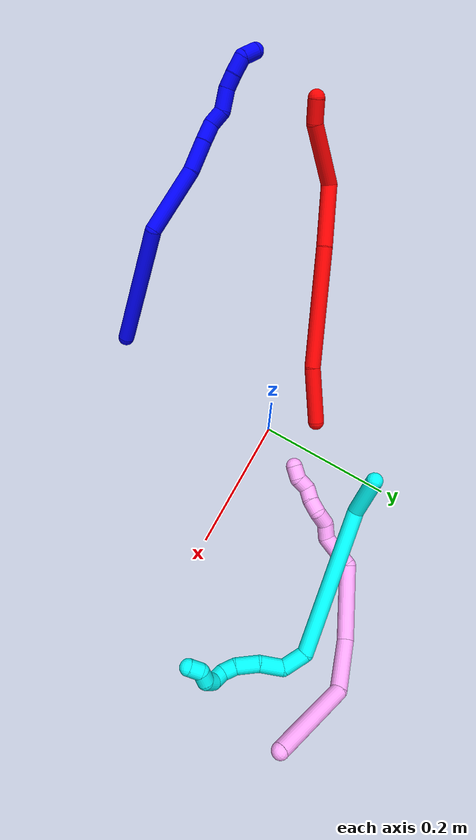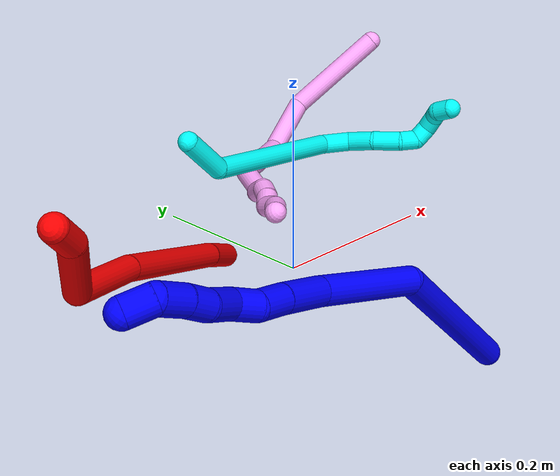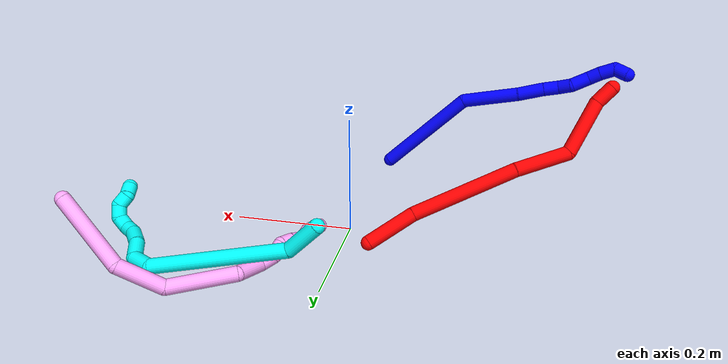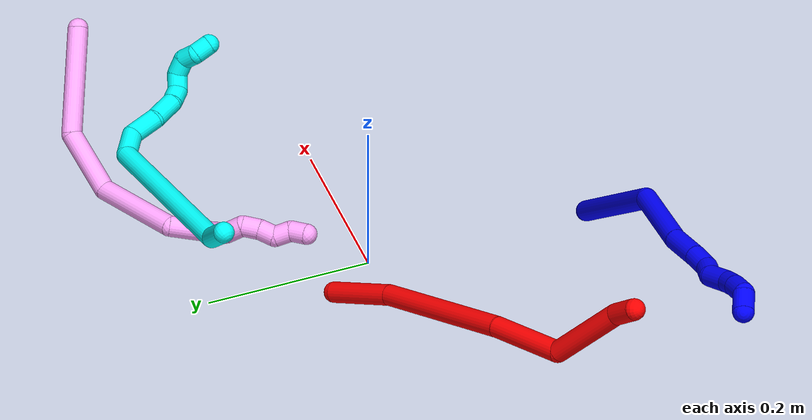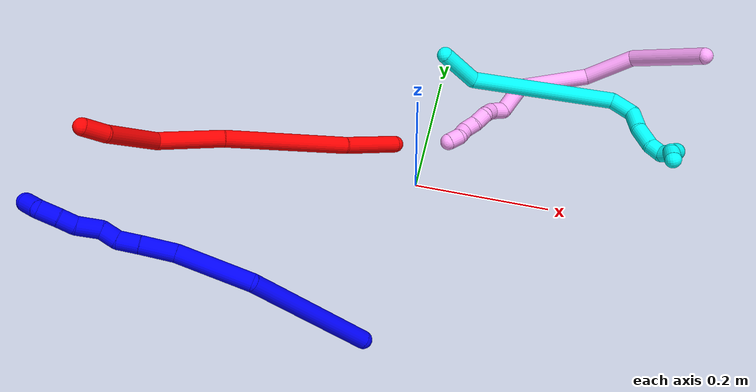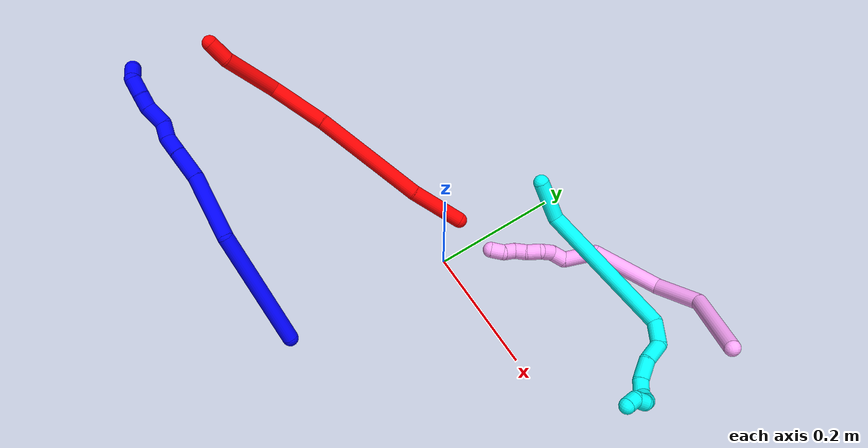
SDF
<sdf version="1.7">
 <world name="default">
  <plugin name="TubeGeneratorPlugin" filename="libtube_generator_plugin.so"/>
  <model name="photoneo_s_sensor">
   <static>1</static>
   <pose>0 0 2 1.57079 1.57079 3.14159</pose>
   <link name="link">
    <inertial><mass>0.1</mass></inertial>
    <sensor name="sensor" type="depth">
     <update_rate>30</update_rate>
     <camera>
      <horizontal_fov>1.22</horizontal_fov>
      <image><width>1920</width><height>1200</height><format>B8G8R8</format></image>
      <clip><near>0.1</near><far>4</far></clip>
      <depth_camera><output>points</output></depth_camera>
     </camera>
     <plugin name="camera_plugin" filename="libgazebo_ros_depth_camera.so">
      <baseline>0.2</baseline>
      <alwaysOn>1</alwaysOn>
      <updateRate>0.0</updateRate>
      <cameraName>camera_ir</cameraName>
      <imageTopicName>/camera/color/image_raw</imageTopicName>
      <cameraInfoTopicName>/camera/color/camera_info</cameraInfoTopicName>
      <depthImageTopicName>/camera/depth/image_raw</depthImageTopicName>
      <depthImageCameraInfoTopicName>/camera/depth/camera_info</depthImageCameraInfoTopicName>
      <pointCloudTopicName>/camera/depth/points</pointCloudTopicName>
      <frameName>fr_optical</frameName>
      <pointCloudCutoff>0.1</pointCloudCutoff>
      <pointCloudCutoffMax>2.0</pointCloudCutoffMax>
      <distortionK1>0</distortionK1>
      <distortionK2>0</distortionK2>
      <distortionK3>0</distortionK3>
      <distortionT1>0</distortionT1>
      <distortionT2>0</distortionT2>
      <CxPrime>0</CxPrime>
      <Cx>0</Cx>
      <Cy>0</Cy>
      <focalLength>0</focalLength>
      <hackBaseline>0</hackBaseline>
     </plugin>
    </sensor>
   </link>
  </model>
  <gravity>0 0 -9.8</gravity>
  <magnetic_field>6e-06 2.3e-05 -4.2e-05</magnetic_field>
  <atmosphere type="adiabatic"/>
  <physics name="default_physics" default="0" type="ode">
   <max_step_size>0.003</max_step_size>
   <real_time_factor>1</real_time_factor>
   <real_time_update_rate>1000</real_time_update_rate>
   <max_contacts>10000</max_contacts>
   <ode>
    <solver>
     <type>quick</type>
     <iters>100</iters>
     <sor>1.3</sor>
     <use_dynamic_moi_rescaling>0</use_dynamic_moi_rescaling>
    </solver>
    <constraints>
     <contact_max_correcting_vel>0</contact_max_correcting_vel>
     <contact_surface_layer>0.001</contact_surface_layer>
     <cfm>0</cfm>
     <erp>0.2</erp>
    </constraints>
   </ode>
  </physics>
  <scene><ambient>0.4 0.4 0.4 1</ambient><background>0.7 0.7 0.7 1</background><shadows>0</shadows></scene>
  <audio><device>default</device></audio>
  <spherical_coordinates>
   <surface_model>EARTH_WGS84</surface_model>
   <latitude_deg>0</latitude_deg>
   <longitude_deg>0</longitude_deg>
   <elevation>0</elevation>
   <heading_deg>0</heading_deg>
  </spherical_coordinates>
  <model name="bin">
   <static>1</static>
   <link name="bottom">
    <collision name="collision-bottom">
     <pose>0 0 -0.01 0 -0 0</pose>
     <geometry><box><size>0.8 0.6 0.02</size></box></geometry>
     <surface>
      <friction><ode><mu>100</mu><mu2>100</mu2></ode></friction>
      <contact><collide_bitmask>65535</collide_bitmask></contact>
     </surface>
    </collision>
   </link>
   <link name="west_wall">
    <collision name="collision-west_wall">
     <pose>-0.41 0 0.1 0 -0 0</pose>
     <geometry><box><size>0.02 0.6 0.2</size></box></geometry>
     <surface>
      <friction><ode><mu>100</mu><mu2>100</mu2></ode></friction>
      <contact><collide_bitmask>65535</collide_bitmask></contact>
     </surface>
    </collision>
   </link>
   <link name="east_wall">
    <collision name="collision-east_wall">
     <pose>0.41 0 0.1 0 -0 0</pose>
     <geometry><box><size>0.02 0.6 0.2</size></box></geometry>
     <surface>
      <friction><ode><mu>100</mu><mu2>100</mu2></ode></friction>
      <contact><collide_bitmask>65535</collide_bitmask></contact>
     </surface>
    </collision>
   </link>
   <link name="south_wall">
    <collision name="collision-south_wall">
     <pose>0 -0.31 0.1 0 -0 0</pose>
     <geometry><box><size>0.8 0.02 0.2</size></box></geometry>
     <surface>
      <friction><ode><mu>100</mu><mu2>100</mu2></ode></friction>
      <contact><collide_bitmask>65535</collide_bitmask></contact>
     </surface>
    </collision>
   </link>
   <link name="north_wall">
    <collision name="collision-north_wall">
     <pose>0 0.31 0.1 0 -0 0</pose>
     <geometry><box><size>0.8 0.02 0.2</size></box></geometry>
     <surface>
      <friction><ode><mu>100</mu><mu2>100</mu2></ode></friction>
      <contact><collide_bitmask>65535</collide_bitmask></contact>
     </surface>
    </collision>
   </link>
  </model>
  <model name="1">
   <static>0</static>
   <link name="1">
    <collision name="collision-cylinder-e_1_1_4">
     <pose>-0.034354 -0.019995 0.086303 0.227668 -0.369936 -0.042777</pose>
     <geometry><cylinder><radius>0.0125</radius><length>0.190033</length></cylinder></geometry>
     <surface>
      <friction><ode><mu>1.16</mu><mu2>1.16</mu2><slip1>0</slip1><slip2>0</slip2></ode></friction>
      <contact><ode><kp>1e+06</kp><kd>1</kd><max_vel>0</max_vel><min_depth>0.001</min_depth></ode></contact>
     </surface>
    </collision>
    <visual name="visual-cylinder-e_1_1_4">
     <pose>-0.034354 -0.019995 0.086303 0.227668 -0.369936 -0.042777</pose>
     <geometry><cylinder><radius>0.0125</radius><length>0.190033</length></cylinder></geometry>
     <material><ambient>0 0 1 1</ambient></material>
    </visual>
    <collision name="collision-cylinder-e_2_4_5">
     <pose>-0.088108 -0.023075 0.217879 -0.357564 -0.381724 0.069804</pose>
     <geometry><cylinder><radius>0.0125</radius><length>0.104157</length></cylinder></geometry>
     <surface>
      <friction><ode><mu>1.16</mu><mu2>1.16</mu2><slip1>0</slip1><slip2>0</slip2></ode></friction>
      <contact><ode><kp>1e+06</kp><kd>1</kd><max_vel>0</max_vel><min_depth>0.001</min_depth></ode></contact>
     </surface>
    </collision>
    <visual name="visual-cylinder-e_2_4_5">
     <pose>-0.088108 -0.023075 0.217879 -0.357564 -0.381724 0.069804</pose>
     <geometry><cylinder><radius>0.0125</radius><length>0.104157</length></cylinder></geometry>
     <material><ambient>0 0 1 1</ambient></material>
    </visual>
    <collision name="collision-cylinder-e_3_5_6">
     <pose>-0.119652 -0.000276 0.282388 -0.296824 -0.543143 0.083215</pose>
     <geometry><cylinder><radius>0.0125</radius><length>0.046994</length></cylinder></geometry>
     <surface>
      <friction><ode><mu>1.16</mu><mu2>1.16</mu2><slip1>0</slip1><slip2>0</slip2></ode></friction>
      <contact><ode><kp>1e+06</kp><kd>1</kd><max_vel>0</max_vel><min_depth>0.001</min_depth></ode></contact>
     </surface>
    </collision>
    <visual name="visual-cylinder-e_3_5_6">
     <pose>-0.119652 -0.000276 0.282388 -0.296824 -0.543143 0.083215</pose>
     <geometry><cylinder><radius>0.0125</radius><length>0.046994</length></cylinder></geometry>
     <material><ambient>0 0 1 1</ambient></material>
    </visual>
    <collision name="collision-cylinder-e_4_6_7">
     <pose>-0.139108 0.010067 0.312842 -0.378342 -0.544562 0.106816</pose>
     <geometry><cylinder><radius>0.0125</radius><length>0.028228</length></cylinder></geometry>
     <surface>
      <friction><ode><mu>1.16</mu><mu2>1.16</mu2><slip1>0</slip1><slip2>0</slip2></ode></friction>
      <contact><ode><kp>1e+06</kp><kd>1</kd><max_vel>0</max_vel><min_depth>0.001</min_depth></ode></contact>
     </surface>
    </collision>
    <visual name="visual-cylinder-e_4_6_7">
     <pose>-0.139108 0.010067 0.312842 -0.378342 -0.544562 0.106816</pose>
     <geometry><cylinder><radius>0.0125</radius><length>0.028228</length></cylinder></geometry>
     <material><ambient>0 0 1 1</ambient></material>
    </visual>
    <collision name="collision-cylinder-e_5_7_8">
     <pose>-0.148662 0.017879 0.335414 -0.287144 -0.187239 0.027146</pose>
     <geometry><cylinder><radius>0.0125</radius><length>0.024096</length></cylinder></geometry>
     <surface>
      <friction><ode><mu>1.16</mu><mu2>1.16</mu2><slip1>0</slip1><slip2>0</slip2></ode></friction>
      <contact><ode><kp>1e+06</kp><kd>1</kd><max_vel>0</max_vel><min_depth>0.001</min_depth></ode></contact>
     </surface>
    </collision>
    <visual name="visual-cylinder-e_5_7_8">
     <pose>-0.148662 0.017879 0.335414 -0.287144 -0.187239 0.027146</pose>
     <geometry><cylinder><radius>0.0125</radius><length>0.024096</length></cylinder></geometry>
     <material><ambient>0 0 1 1</ambient></material>
    </visual>
    <collision name="collision-cylinder-e_6_8_9">
     <pose>-0.160939 0.021971 0.35972 -0.057059 -0.658285 0.019494</pose>
     <geometry><cylinder><radius>0.0125</radius><length>0.032803</length></cylinder></geometry>
     <surface>
      <friction><ode><mu>1.16</mu><mu2>1.16</mu2><slip1>0</slip1><slip2>0</slip2></ode></friction>
      <contact><ode><kp>1e+06</kp><kd>1</kd><max_vel>0</max_vel><min_depth>0.001</min_depth></ode></contact>
     </surface>
    </collision>
    <visual name="visual-cylinder-e_6_8_9">
     <pose>-0.160939 0.021971 0.35972 -0.057059 -0.658285 0.019494</pose>
     <geometry><cylinder><radius>0.0125</radius><length>0.032803</length></cylinder></geometry>
     <material><ambient>0 0 1 1</ambient></material>
    </visual>
    <collision name="collision-cylinder-e_7_9_10">
     <pose>-0.175034 0.023301 0.383042 -0.056848 -0.372783 0.010723</pose>
     <geometry><cylinder><radius>0.0125</radius><length>0.022303</length></cylinder></geometry>
     <surface>
      <friction><ode><mu>1.16</mu><mu2>1.16</mu2><slip1>0</slip1><slip2>0</slip2></ode></friction>
      <contact><ode><kp>1e+06</kp><kd>1</kd><max_vel>0</max_vel><min_depth>0.001</min_depth></ode></contact>
     </surface>
    </collision>
    <visual name="visual-cylinder-e_7_9_10">
     <pose>-0.175034 0.023301 0.383042 -0.056848 -0.372783 0.010723</pose>
     <geometry><cylinder><radius>0.0125</radius><length>0.022303</length></cylinder></geometry>
     <material><ambient>0 0 1 1</ambient></material>
    </visual>
    <collision name="collision-cylinder-e_8_10_11">
     <pose>-0.184136 0.026073 0.405658 -0.176326 -0.384965 0.034451</pose>
     <geometry><cylinder><radius>0.0125</radius><length>0.026844</length></cylinder></geometry>
     <surface>
      <friction><ode><mu>1.16</mu><mu2>1.16</mu2><slip1>0</slip1><slip2>0</slip2></ode></friction>
      <contact><ode><kp>1e+06</kp><kd>1</kd><max_vel>0</max_vel><min_depth>0.001</min_depth></ode></contact>
     </surface>
    </collision>
    <visual name="visual-cylinder-e_8_10_11">
     <pose>-0.184136 0.026073 0.405658 -0.176326 -0.384965 0.034451</pose>
     <geometry><cylinder><radius>0.0125</radius><length>0.026844</length></cylinder></geometry>
     <material><ambient>0 0 1 1</ambient></material>
    </visual>
    <collision name="collision-cylinder-e_9_11_2">
     <pose>-0.190294 0.037703 0.425654 -0.883827 -0.091245 0.043193</pose>
     <geometry><cylinder><radius>0.0125</radius><length>0.024542</length></cylinder></geometry>
     <surface>
      <friction><ode><mu>1.16</mu><mu2>1.16</mu2><slip1>0</slip1><slip2>0</slip2></ode></friction>
      <contact><ode><kp>1e+06</kp><kd>1</kd><max_vel>0</max_vel><min_depth>0.001</min_depth></ode></contact>
     </surface>
    </collision>
    <visual name="visual-cylinder-e_9_11_2">
     <pose>-0.190294 0.037703 0.425654 -0.883827 -0.091245 0.043193</pose>
     <geometry><cylinder><radius>0.0125</radius><length>0.024542</length></cylinder></geometry>
     <material><ambient>0 0 1 1</ambient></material>
    </visual>
    <collision name="collision-sphere-2">
     <pose>-0.191412 0.047151 0.433404 0 -0 0</pose>
     <geometry><sphere><radius>0.0125</radius></sphere></geometry>
     <surface>
      <friction><ode><mu>1.16</mu><mu2>1.16</mu2><slip1>0</slip1><slip2>0</slip2></ode></friction>
      <contact><ode><kp>1e+06</kp><kd>1</kd><max_vel>0</max_vel><min_depth>0.001</min_depth></ode></contact>
     </surface>
    </collision>
    <visual name="visual-sphere-2">
     <pose>-0.191412 0.047151 0.433404 0 -0 0</pose>
     <geometry><sphere><radius>0.0125</radius></sphere></geometry>
     <material><ambient>0 0 1 1</ambient></material>
    </visual>
    <collision name="collision-sphere-11">
     <pose>-0.189176 0.028255 0.417904 0 -0 0</pose>
     <geometry><sphere><radius>0.0125</radius></sphere></geometry>
     <surface>
      <friction><ode><mu>1.16</mu><mu2>1.16</mu2><slip1>0</slip1><slip2>0</slip2></ode></friction>
      <contact><ode><kp>1e+06</kp><kd>1</kd><max_vel>0</max_vel><min_depth>0.001</min_depth></ode></contact>
     </surface>
    </collision>
    <visual name="visual-sphere-11">
     <pose>-0.189176 0.028255 0.417904 0 -0 0</pose>
     <geometry><sphere><radius>0.0125</radius></sphere></geometry>
     <material><ambient>0 0 1 1</ambient></material>
    </visual>
    <collision name="collision-sphere-10">
     <pose>-0.179096 0.023891 0.393411 0 -0 0</pose>
     <geometry><sphere><radius>0.0125</radius></sphere></geometry>
     <surface>
      <friction><ode><mu>1.16</mu><mu2>1.16</mu2><slip1>0</slip1><slip2>0</slip2></ode></friction>
      <contact><ode><kp>1e+06</kp><kd>1</kd><max_vel>0</max_vel><min_depth>0.001</min_depth></ode></contact>
     </surface>
    </collision>
    <visual name="visual-sphere-10">
     <pose>-0.179096 0.023891 0.393411 0 -0 0</pose>
     <geometry><sphere><radius>0.0125</radius></sphere></geometry>
     <material><ambient>0 0 1 1</ambient></material>
    </visual>
    <collision name="collision-sphere-9">
     <pose>-0.170973 0.022711 0.372673 0 -0 0</pose>
     <geometry><sphere><radius>0.0125</radius></sphere></geometry>
     <surface>
      <friction><ode><mu>1.16</mu><mu2>1.16</mu2><slip1>0</slip1><slip2>0</slip2></ode></friction>
      <contact><ode><kp>1e+06</kp><kd>1</kd><max_vel>0</max_vel><min_depth>0.001</min_depth></ode></contact>
     </surface>
    </collision>
    <visual name="visual-sphere-9">
     <pose>-0.170973 0.022711 0.372673 0 -0 0</pose>
     <geometry><sphere><radius>0.0125</radius></sphere></geometry>
     <material><ambient>0 0 1 1</ambient></material>
    </visual>
    <collision name="collision-sphere-4">
     <pose>-0.068707 -0.03999 0.172605 0 -0 0</pose>
     <geometry><sphere><radius>0.0125</radius></sphere></geometry>
     <surface>
      <friction><ode><mu>1.16</mu><mu2>1.16</mu2><slip1>0</slip1><slip2>0</slip2></ode></friction>
      <contact><ode><kp>1e+06</kp><kd>1</kd><max_vel>0</max_vel><min_depth>0.001</min_depth></ode></contact>
     </surface>
    </collision>
    <visual name="visual-sphere-4">
     <pose>-0.068707 -0.03999 0.172605 0 -0 0</pose>
     <geometry><sphere><radius>0.0125</radius></sphere></geometry>
     <material><ambient>0 0 1 1</ambient></material>
    </visual>
    <collision name="collision-sphere-1">
     <geometry><sphere><radius>0.0125</radius></sphere></geometry>
     <surface>
      <friction><ode><mu>1.16</mu><mu2>1.16</mu2><slip1>0</slip1><slip2>0</slip2></ode></friction>
      <contact><ode><kp>1e+06</kp><kd>1</kd><max_vel>0</max_vel><min_depth>0.001</min_depth></ode></contact>
     </surface>
    </collision>
    <visual name="visual-sphere-1">
     <geometry><sphere><radius>0.0125</radius></sphere></geometry>
     <material><ambient>0 0 1 1</ambient></material>
    </visual>
    <collision name="collision-sphere-8">
     <pose>-0.150905 0.021231 0.346766 0 -0 0</pose>
     <geometry><sphere><radius>0.0125</radius></sphere></geometry>
     <surface>
      <friction><ode><mu>1.16</mu><mu2>1.16</mu2><slip1>0</slip1><slip2>0</slip2></ode></friction>
      <contact><ode><kp>1e+06</kp><kd>1</kd><max_vel>0</max_vel><min_depth>0.001</min_depth></ode></contact>
     </surface>
    </collision>
    <visual name="visual-sphere-8">
     <pose>-0.150905 0.021231 0.346766 0 -0 0</pose>
     <geometry><sphere><radius>0.0125</radius></sphere></geometry>
     <material><ambient>0 0 1 1</ambient></material>
    </visual>
    <collision name="collision-sphere-5">
     <pose>-0.107508 -0.00616 0.263152 0 -0 0</pose>
     <geometry><sphere><radius>0.0125</radius></sphere></geometry>
     <surface>
      <friction><ode><mu>1.16</mu><mu2>1.16</mu2><slip1>0</slip1><slip2>0</slip2></ode></friction>
      <contact><ode><kp>1e+06</kp><kd>1</kd><max_vel>0</max_vel><min_depth>0.001</min_depth></ode></contact>
     </surface>
    </collision>
    <visual name="visual-sphere-5">
     <pose>-0.107508 -0.00616 0.263152 0 -0 0</pose>
     <geometry><sphere><radius>0.0125</radius></sphere></geometry>
     <material><ambient>0 0 1 1</ambient></material>
    </visual>
    <collision name="collision-sphere-6">
     <pose>-0.131796 0.005607 0.301624 0 -0 0</pose>
     <geometry><sphere><radius>0.0125</radius></sphere></geometry>
     <surface>
      <friction><ode><mu>1.16</mu><mu2>1.16</mu2><slip1>0</slip1><slip2>0</slip2></ode></friction>
      <contact><ode><kp>1e+06</kp><kd>1</kd><max_vel>0</max_vel><min_depth>0.001</min_depth></ode></contact>
     </surface>
    </collision>
    <visual name="visual-sphere-6">
     <pose>-0.131796 0.005607 0.301624 0 -0 0</pose>
     <geometry><sphere><radius>0.0125</radius></sphere></geometry>
     <material><ambient>0 0 1 1</ambient></material>
    </visual>
    <collision name="collision-sphere-7">
     <pose>-0.146419 0.014526 0.324061 0 -0 0</pose>
     <geometry><sphere><radius>0.0125</radius></sphere></geometry>
     <surface>
      <friction><ode><mu>1.16</mu><mu2>1.16</mu2><slip1>0</slip1><slip2>0</slip2></ode></friction>
      <contact><ode><kp>1e+06</kp><kd>1</kd><max_vel>0</max_vel><min_depth>0.001</min_depth></ode></contact>
     </surface>
    </collision>
    <visual name="visual-sphere-7">
     <pose>-0.146419 0.014526 0.324061 0 -0 0</pose>
     <geometry><sphere><radius>0.0125</radius></sphere></geometry>
     <material><ambient>0 0 1 1</ambient></material>
    </visual>
    <inertial>
     <pose>-0.095267 -0.005271 0.221913 0 -0 0</pose>
     <mass>0.5</mass>
     <inertia>
      <ixx>0.000623</ixx>
      <ixy>0</ixy>
      <ixz>0</ixz>
      <iyy>0.000672</iyy>
      <iyz>0</iyz>
      <izz>0.000375</izz>
     </inertia>
    </inertial>
   </link>
   <pose>-0.015948 -0.272351 0.011498 -0.933719 -0.069347 1.08071</pose>
  </model>
  <model name="2">
   <static>0</static>
   <link name="2">
    <collision name="collision-cylinder-e_1_1_4">
     <pose>-0.000978 -0.002642 0.04368 0.060422 -0.022335 -0.000675</pose>
     <geometry><cylinder><radius>0.0125</radius><length>0.087541</length></cylinder></geometry>
     <surface>
      <friction><ode><mu>1.16</mu><mu2>1.16</mu2><slip1>0</slip1><slip2>0</slip2></ode></friction>
      <contact><ode><kp>1e+06</kp><kd>1</kd><max_vel>0</max_vel><min_depth>0.001</min_depth></ode></contact>
     </surface>
    </collision>
    <visual name="visual-cylinder-e_1_1_4">
     <pose>-0.000978 -0.002642 0.04368 0.060422 -0.022335 -0.000675</pose>
     <geometry><cylinder><radius>0.0125</radius><length>0.087541</length></cylinder></geometry>
     <material><ambient>1 0 0 1</ambient></material>
    </visual>
    <collision name="collision-cylinder-e_2_4_5">
     <pose>-0.020929 -0.012667 0.177371 0.081833 -0.207074 -0.008508</pose>
     <geometry><cylinder><radius>0.0125</radius><length>0.184571</length></cylinder></geometry>
     <surface>
      <friction><ode><mu>1.16</mu><mu2>1.16</mu2><slip1>0</slip1><slip2>0</slip2></ode></friction>
      <contact><ode><kp>1e+06</kp><kd>1</kd><max_vel>0</max_vel><min_depth>0.001</min_depth></ode></contact>
     </surface>
    </collision>
    <visual name="visual-cylinder-e_2_4_5">
     <pose>-0.020929 -0.012667 0.177371 0.081833 -0.207074 -0.008508</pose>
     <geometry><cylinder><radius>0.0125</radius><length>0.184571</length></cylinder></geometry>
     <material><ambient>1 0 0 1</ambient></material>
    </visual>
    <collision name="collision-cylinder-e_3_5_6">
     <pose>-0.051011 -0.029467 0.312677 0.204996 -0.235651 -0.02435</pose>
     <geometry><cylinder><radius>0.0125</radius><length>0.095157</length></cylinder></geometry>
     <surface>
      <friction><ode><mu>1.16</mu><mu2>1.16</mu2><slip1>0</slip1><slip2>0</slip2></ode></friction>
      <contact><ode><kp>1e+06</kp><kd>1</kd><max_vel>0</max_vel><min_depth>0.001</min_depth></ode></contact>
     </surface>
    </collision>
    <visual name="visual-cylinder-e_3_5_6">
     <pose>-0.051011 -0.029467 0.312677 0.204996 -0.235651 -0.02435</pose>
     <geometry><cylinder><radius>0.0125</radius><length>0.095157</length></cylinder></geometry>
     <material><ambient>1 0 0 1</ambient></material>
    </visual>
    <collision name="collision-cylinder-e_4_6_7">
     <pose>-0.04659 -0.025688 0.402404 -0.288714 0.323288 -0.047401</pose>
     <geometry><cylinder><radius>0.0125</radius><length>0.097765</length></cylinder></geometry>
     <surface>
      <friction><ode><mu>1.16</mu><mu2>1.16</mu2><slip1>0</slip1><slip2>0</slip2></ode></friction>
      <contact><ode><kp>1e+06</kp><kd>1</kd><max_vel>0</max_vel><min_depth>0.001</min_depth></ode></contact>
     </surface>
    </collision>
    <visual name="visual-cylinder-e_4_6_7">
     <pose>-0.04659 -0.025688 0.402404 -0.288714 0.323288 -0.047401</pose>
     <geometry><cylinder><radius>0.0125</radius><length>0.097765</length></cylinder></geometry>
     <material><ambient>1 0 0 1</ambient></material>
    </visual>
    <collision name="collision-cylinder-e_5_7_2">
     <pose>-0.03137 -0.007995 0.463728 -0.260103 -0.017698 0.002315</pose>
     <geometry><cylinder><radius>0.0125</radius><length>0.034966</length></cylinder></geometry>
     <surface>
      <friction><ode><mu>1.16</mu><mu2>1.16</mu2><slip1>0</slip1><slip2>0</slip2></ode></friction>
      <contact><ode><kp>1e+06</kp><kd>1</kd><max_vel>0</max_vel><min_depth>0.001</min_depth></ode></contact>
     </surface>
    </collision>
    <visual name="visual-cylinder-e_5_7_2">
     <pose>-0.03137 -0.007995 0.463728 -0.260103 -0.017698 0.002315</pose>
     <geometry><cylinder><radius>0.0125</radius><length>0.034966</length></cylinder></geometry>
     <material><ambient>1 0 0 1</ambient></material>
    </visual>
    <collision name="collision-sphere-2">
     <pose>-0.031679 -0.0035 0.480621 0 -0 0</pose>
     <geometry><sphere><radius>0.0125</radius></sphere></geometry>
     <surface>
      <friction><ode><mu>1.16</mu><mu2>1.16</mu2><slip1>0</slip1><slip2>0</slip2></ode></friction>
      <contact><ode><kp>1e+06</kp><kd>1</kd><max_vel>0</max_vel><min_depth>0.001</min_depth></ode></contact>
     </surface>
    </collision>
    <visual name="visual-sphere-2">
     <pose>-0.031679 -0.0035 0.480621 0 -0 0</pose>
     <geometry><sphere><radius>0.0125</radius></sphere></geometry>
     <material><ambient>1 0 0 1</ambient></material>
    </visual>
    <collision name="collision-sphere-7">
     <pose>-0.03106 -0.012491 0.446836 0 -0 0</pose>
     <geometry><sphere><radius>0.0125</radius></sphere></geometry>
     <surface>
      <friction><ode><mu>1.16</mu><mu2>1.16</mu2><slip1>0</slip1><slip2>0</slip2></ode></friction>
      <contact><ode><kp>1e+06</kp><kd>1</kd><max_vel>0</max_vel><min_depth>0.001</min_depth></ode></contact>
     </surface>
    </collision>
    <visual name="visual-sphere-7">
     <pose>-0.03106 -0.012491 0.446836 0 -0 0</pose>
     <geometry><sphere><radius>0.0125</radius></sphere></geometry>
     <material><ambient>1 0 0 1</ambient></material>
    </visual>
    <collision name="collision-sphere-6">
     <pose>-0.062119 -0.038885 0.357972 0 -0 0</pose>
     <geometry><sphere><radius>0.0125</radius></sphere></geometry>
     <surface>
      <friction><ode><mu>1.16</mu><mu2>1.16</mu2><slip1>0</slip1><slip2>0</slip2></ode></friction>
      <contact><ode><kp>1e+06</kp><kd>1</kd><max_vel>0</max_vel><min_depth>0.001</min_depth></ode></contact>
     </surface>
    </collision>
    <visual name="visual-sphere-6">
     <pose>-0.062119 -0.038885 0.357972 0 -0 0</pose>
     <geometry><sphere><radius>0.0125</radius></sphere></geometry>
     <material><ambient>1 0 0 1</ambient></material>
    </visual>
    <collision name="collision-sphere-5">
     <pose>-0.039902 -0.02005 0.267382 0 -0 0</pose>
     <geometry><sphere><radius>0.0125</radius></sphere></geometry>
     <surface>
      <friction><ode><mu>1.16</mu><mu2>1.16</mu2><slip1>0</slip1><slip2>0</slip2></ode></friction>
      <contact><ode><kp>1e+06</kp><kd>1</kd><max_vel>0</max_vel><min_depth>0.001</min_depth></ode></contact>
     </surface>
    </collision>
    <visual name="visual-sphere-5">
     <pose>-0.039902 -0.02005 0.267382 0 -0 0</pose>
     <geometry><sphere><radius>0.0125</radius></sphere></geometry>
     <material><ambient>1 0 0 1</ambient></material>
    </visual>
    <collision name="collision-sphere-1">
     <geometry><sphere><radius>0.0125</radius></sphere></geometry>
     <surface>
      <friction><ode><mu>1.16</mu><mu2>1.16</mu2><slip1>0</slip1><slip2>0</slip2></ode></friction>
      <contact><ode><kp>1e+06</kp><kd>1</kd><max_vel>0</max_vel><min_depth>0.001</min_depth></ode></contact>
     </surface>
    </collision>
    <visual name="visual-sphere-1">
     <geometry><sphere><radius>0.0125</radius></sphere></geometry>
     <material><ambient>1 0 0 1</ambient></material>
    </visual>
    <collision name="collision-sphere-4">
     <pose>-0.001955 -0.005285 0.087359 0 -0 0</pose>
     <geometry><sphere><radius>0.0125</radius></sphere></geometry>
     <surface>
      <friction><ode><mu>1.16</mu><mu2>1.16</mu2><slip1>0</slip1><slip2>0</slip2></ode></friction>
      <contact><ode><kp>1e+06</kp><kd>1</kd><max_vel>0</max_vel><min_depth>0.001</min_depth></ode></contact>
     </surface>
    </collision>
    <visual name="visual-sphere-4">
     <pose>-0.001955 -0.005285 0.087359 0 -0 0</pose>
     <geometry><sphere><radius>0.0125</radius></sphere></geometry>
     <material><ambient>1 0 0 1</ambient></material>
    </visual>
    <inertial>
     <pose>-0.028908 -0.016329 0.243741 0 -0 0</pose>
     <mass>0.5</mass>
     <inertia>
      <ixx>0.000722</ixx>
      <ixy>0</ixy>
      <ixz>0</ixz>
      <iyy>0.000736</iyy>
      <iyz>0</iyz>
      <izz>0.000178</izz>
     </inertia>
    </inertial>
   </link>
   <pose>-0.04497 0.05948 0.011494 1.04364 -0.283632 -0.806136</pose>
  </model>
  <model name="3">
   <static>0</static>
   <link name="3">
    <collision name="collision-cylinder-e_1_1_4">
     <pose>0.022063 0.018826 0.014815 -0.904055 0.744283 -0.374611</pose>
     <geometry><cylinder><radius>0.0125</radius><length>0.065137</length></cylinder></geometry>
     <surface>
      <friction><ode><mu>1.16</mu><mu2>1.16</mu2><slip1>0</slip1><slip2>0</slip2></ode></friction>
      <contact><ode><kp>1e+06</kp><kd>1</kd><max_vel>0</max_vel><min_depth>0.001</min_depth></ode></contact>
     </surface>
    </collision>
    <visual name="visual-cylinder-e_1_1_4">
     <pose>0.022063 0.018826 0.014815 -0.904055 0.744283 -0.374611</pose>
     <geometry><cylinder><radius>0.0125</radius><length>0.065137</length></cylinder></geometry>
     <material><ambient>0.003922 1 0.996078 1</ambient></material>
    </visual>
    <collision name="collision-cylinder-e_2_4_5">
     <pose>0.079342 0.071576 0.129415 -0.327719 0.322474 -0.053772</pose>
     <geometry><cylinder><radius>0.0125</radius><length>0.222242</length></cylinder></geometry>
     <surface>
      <friction><ode><mu>1.16</mu><mu2>1.16</mu2><slip1>0</slip1><slip2>0</slip2></ode></friction>
      <contact><ode><kp>1e+06</kp><kd>1</kd><max_vel>0</max_vel><min_depth>0.001</min_depth></ode></contact>
     </surface>
    </collision>
    <visual name="visual-cylinder-e_2_4_5">
     <pose>0.079342 0.071576 0.129415 -0.327719 0.322474 -0.053772</pose>
     <geometry><cylinder><radius>0.0125</radius><length>0.222242</length></cylinder></geometry>
     <material><ambient>0.003922 1 0.996078 1</ambient></material>
    </visual>
    <collision name="collision-cylinder-e_3_5_6">
     <pose>0.126701 0.100679 0.243046 0.335067 0.691661 0.12172</pose>
     <geometry><cylinder><radius>0.0125</radius><length>0.038075</length></cylinder></geometry>
     <surface>
      <friction><ode><mu>1.16</mu><mu2>1.16</mu2><slip1>0</slip1><slip2>0</slip2></ode></friction>
      <contact><ode><kp>1e+06</kp><kd>1</kd><max_vel>0</max_vel><min_depth>0.001</min_depth></ode></contact>
     </surface>
    </collision>
    <visual name="visual-cylinder-e_3_5_6">
     <pose>0.126701 0.100679 0.243046 0.335067 0.691661 0.12172</pose>
     <geometry><cylinder><radius>0.0125</radius><length>0.038075</length></cylinder></geometry>
     <material><ambient>0.003922 1 0.996078 1</ambient></material>
    </visual>
    <collision name="collision-cylinder-e_4_6_7">
     <pose>0.150739 0.082328 0.259906 1.35171 0.709236 0.577211</pose>
     <geometry><cylinder><radius>0.0125</radius><length>0.036532</length></cylinder></geometry>
     <surface>
      <friction><ode><mu>1.16</mu><mu2>1.16</mu2><slip1>0</slip1><slip2>0</slip2></ode></friction>
      <contact><ode><kp>1e+06</kp><kd>1</kd><max_vel>0</max_vel><min_depth>0.001</min_depth></ode></contact>
     </surface>
    </collision>
    <visual name="visual-cylinder-e_4_6_7">
     <pose>0.150739 0.082328 0.259906 1.35171 0.709236 0.577211</pose>
     <geometry><cylinder><radius>0.0125</radius><length>0.036532</length></cylinder></geometry>
     <material><ambient>0.003922 1 0.996078 1</ambient></material>
    </visual>
    <collision name="collision-cylinder-e_5_7_8">
     <pose>0.175561 0.059525 0.269675 0.941156 0.844856 0.449575</pose>
     <geometry><cylinder><radius>0.0125</radius><length>0.034567</length></cylinder></geometry>
     <surface>
      <friction><ode><mu>1.16</mu><mu2>1.16</mu2><slip1>0</slip1><slip2>0</slip2></ode></friction>
      <contact><ode><kp>1e+06</kp><kd>1</kd><max_vel>0</max_vel><min_depth>0.001</min_depth></ode></contact>
     </surface>
    </collision>
    <visual name="visual-cylinder-e_5_7_8">
     <pose>0.175561 0.059525 0.269675 0.941156 0.844856 0.449575</pose>
     <geometry><cylinder><radius>0.0125</radius><length>0.034567</length></cylinder></geometry>
     <material><ambient>0.003922 1 0.996078 1</ambient></material>
    </visual>
    <collision name="collision-cylinder-e_6_8_9">
     <pose>0.195835 0.046238 0.283562 0.512558 0.73174 0.200116</pose>
     <geometry><cylinder><radius>0.0125</radius><length>0.021996</length></cylinder></geometry>
     <surface>
      <friction><ode><mu>1.16</mu><mu2>1.16</mu2><slip1>0</slip1><slip2>0</slip2></ode></friction>
      <contact><ode><kp>1e+06</kp><kd>1</kd><max_vel>0</max_vel><min_depth>0.001</min_depth></ode></contact>
     </surface>
    </collision>
    <visual name="visual-cylinder-e_6_8_9">
     <pose>0.195835 0.046238 0.283562 0.512558 0.73174 0.200116</pose>
     <geometry><cylinder><radius>0.0125</radius><length>0.021996</length></cylinder></geometry>
     <material><ambient>0.003922 1 0.996078 1</ambient></material>
    </visual>
    <collision name="collision-cylinder-e_7_9_10">
     <pose>0.20323 0.036098 0.299057 0.63222 0.004481 0.001466</pose>
     <geometry><cylinder><radius>0.0125</radius><length>0.020737</length></cylinder></geometry>
     <surface>
      <friction><ode><mu>1.16</mu><mu2>1.16</mu2><slip1>0</slip1><slip2>0</slip2></ode></friction>
      <contact><ode><kp>1e+06</kp><kd>1</kd><max_vel>0</max_vel><min_depth>0.001</min_depth></ode></contact>
     </surface>
    </collision>
    <visual name="visual-cylinder-e_7_9_10">
     <pose>0.20323 0.036098 0.299057 0.63222 0.004481 0.001466</pose>
     <geometry><cylinder><radius>0.0125</radius><length>0.020737</length></cylinder></geometry>
     <material><ambient>0.003922 1 0.996078 1</ambient></material>
    </visual>
    <collision name="collision-cylinder-e_8_10_11">
     <pose>0.201859 0.020318 0.310382 1.27327 -0.139491 -0.103206</pose>
     <geometry><cylinder><radius>0.0125</radius><length>0.020392</length></cylinder></geometry>
     <surface>
      <friction><ode><mu>1.16</mu><mu2>1.16</mu2><slip1>0</slip1><slip2>0</slip2></ode></friction>
      <contact><ode><kp>1e+06</kp><kd>1</kd><max_vel>0</max_vel><min_depth>0.001</min_depth></ode></contact>
     </surface>
    </collision>
    <visual name="visual-cylinder-e_8_10_11">
     <pose>0.201859 0.020318 0.310382 1.27327 -0.139491 -0.103206</pose>
     <geometry><cylinder><radius>0.0125</radius><length>0.020392</length></cylinder></geometry>
     <material><ambient>0.003922 1 0.996078 1</ambient></material>
    </visual>
    <collision name="collision-cylinder-e_9_11_12">
     <pose>0.199357 0.001513 0.309446 1.97319 -0.108643 -0.164107</pose>
     <geometry><cylinder><radius>0.0125</radius><length>0.02001</length></cylinder></geometry>
     <surface>
      <friction><ode><mu>1.16</mu><mu2>1.16</mu2><slip1>0</slip1><slip2>0</slip2></ode></friction>
      <contact><ode><kp>1e+06</kp><kd>1</kd><max_vel>0</max_vel><min_depth>0.001</min_depth></ode></contact>
     </surface>
    </collision>
    <visual name="visual-cylinder-e_9_11_12">
     <pose>0.199357 0.001513 0.309446 1.97319 -0.108643 -0.164107</pose>
     <geometry><cylinder><radius>0.0125</radius><length>0.02001</length></cylinder></geometry>
     <material><ambient>0.003922 1 0.996078 1</ambient></material>
    </visual>
    <collision name="collision-cylinder-e_10_12_2">
     <pose>0.203051 -0.016583 0.306099 1.50967 0.489908 0.461894</pose>
     <geometry><cylinder><radius>0.0125</radius><length>0.020311</length></cylinder></geometry>
     <surface>
      <friction><ode><mu>1.16</mu><mu2>1.16</mu2><slip1>0</slip1><slip2>0</slip2></ode></friction>
      <contact><ode><kp>1e+06</kp><kd>1</kd><max_vel>0</max_vel><min_depth>0.001</min_depth></ode></contact>
     </surface>
    </collision>
    <visual name="visual-cylinder-e_10_12_2">
     <pose>0.203051 -0.016583 0.306099 1.50967 0.489908 0.461894</pose>
     <geometry><cylinder><radius>0.0125</radius><length>0.020311</length></cylinder></geometry>
     <material><ambient>0.003922 1 0.996078 1</ambient></material>
    </visual>
    <collision name="collision-sphere-2">
     <pose>0.207829 -0.025528 0.306646 0 -0 0</pose>
     <geometry><sphere><radius>0.0125</radius></sphere></geometry>
     <surface>
      <friction><ode><mu>1.16</mu><mu2>1.16</mu2><slip1>0</slip1><slip2>0</slip2></ode></friction>
      <contact><ode><kp>1e+06</kp><kd>1</kd><max_vel>0</max_vel><min_depth>0.001</min_depth></ode></contact>
     </surface>
    </collision>
    <visual name="visual-sphere-2">
     <pose>0.207829 -0.025528 0.306646 0 -0 0</pose>
     <geometry><sphere><radius>0.0125</radius></sphere></geometry>
     <material><ambient>0.003922 1 0.996078 1</ambient></material>
    </visual>
    <collision name="collision-sphere-12">
     <pose>0.198272 -0.007639 0.305551 0 -0 0</pose>
     <geometry><sphere><radius>0.0125</radius></sphere></geometry>
     <surface>
      <friction><ode><mu>1.16</mu><mu2>1.16</mu2><slip1>0</slip1><slip2>0</slip2></ode></friction>
      <contact><ode><kp>1e+06</kp><kd>1</kd><max_vel>0</max_vel><min_depth>0.001</min_depth></ode></contact>
     </surface>
    </collision>
    <visual name="visual-sphere-12">
     <pose>0.198272 -0.007639 0.305551 0 -0 0</pose>
     <geometry><sphere><radius>0.0125</radius></sphere></geometry>
     <material><ambient>0.003922 1 0.996078 1</ambient></material>
    </visual>
    <collision name="collision-sphere-11">
     <pose>0.200442 0.010665 0.313342 0 -0 0</pose>
     <geometry><sphere><radius>0.0125</radius></sphere></geometry>
     <surface>
      <friction><ode><mu>1.16</mu><mu2>1.16</mu2><slip1>0</slip1><slip2>0</slip2></ode></friction>
      <contact><ode><kp>1e+06</kp><kd>1</kd><max_vel>0</max_vel><min_depth>0.001</min_depth></ode></contact>
     </surface>
    </collision>
    <visual name="visual-sphere-11">
     <pose>0.200442 0.010665 0.313342 0 -0 0</pose>
     <geometry><sphere><radius>0.0125</radius></sphere></geometry>
     <material><ambient>0.003922 1 0.996078 1</ambient></material>
    </visual>
    <collision name="collision-sphere-10">
     <pose>0.203277 0.029972 0.307422 0 -0 0</pose>
     <geometry><sphere><radius>0.0125</radius></sphere></geometry>
     <surface>
      <friction><ode><mu>1.16</mu><mu2>1.16</mu2><slip1>0</slip1><slip2>0</slip2></ode></friction>
      <contact><ode><kp>1e+06</kp><kd>1</kd><max_vel>0</max_vel><min_depth>0.001</min_depth></ode></contact>
     </surface>
    </collision>
    <visual name="visual-sphere-10">
     <pose>0.203277 0.029972 0.307422 0 -0 0</pose>
     <geometry><sphere><radius>0.0125</radius></sphere></geometry>
     <material><ambient>0.003922 1 0.996078 1</ambient></material>
    </visual>
    <collision name="collision-sphere-9">
     <pose>0.203184 0.042225 0.290693 0 -0 0</pose>
     <geometry><sphere><radius>0.0125</radius></sphere></geometry>
     <surface>
      <friction><ode><mu>1.16</mu><mu2>1.16</mu2><slip1>0</slip1><slip2>0</slip2></ode></friction>
      <contact><ode><kp>1e+06</kp><kd>1</kd><max_vel>0</max_vel><min_depth>0.001</min_depth></ode></contact>
     </surface>
    </collision>
    <visual name="visual-sphere-9">
     <pose>0.203184 0.042225 0.290693 0 -0 0</pose>
     <geometry><sphere><radius>0.0125</radius></sphere></geometry>
     <material><ambient>0.003922 1 0.996078 1</ambient></material>
    </visual>
    <collision name="collision-sphere-4">
     <pose>0.044127 0.037652 0.029631 0 -0 0</pose>
     <geometry><sphere><radius>0.0125</radius></sphere></geometry>
     <surface>
      <friction><ode><mu>1.16</mu><mu2>1.16</mu2><slip1>0</slip1><slip2>0</slip2></ode></friction>
      <contact><ode><kp>1e+06</kp><kd>1</kd><max_vel>0</max_vel><min_depth>0.001</min_depth></ode></contact>
     </surface>
    </collision>
    <visual name="visual-sphere-4">
     <pose>0.044127 0.037652 0.029631 0 -0 0</pose>
     <geometry><sphere><radius>0.0125</radius></sphere></geometry>
     <material><ambient>0.003922 1 0.996078 1</ambient></material>
    </visual>
    <collision name="collision-sphere-1">
     <geometry><sphere><radius>0.0125</radius></sphere></geometry>
     <surface>
      <friction><ode><mu>1.16</mu><mu2>1.16</mu2><slip1>0</slip1><slip2>0</slip2></ode></friction>
      <contact><ode><kp>1e+06</kp><kd>1</kd><max_vel>0</max_vel><min_depth>0.001</min_depth></ode></contact>
     </surface>
    </collision>
    <visual name="visual-sphere-1">
     <geometry><sphere><radius>0.0125</radius></sphere></geometry>
     <material><ambient>0.003922 1 0.996078 1</ambient></material>
    </visual>
    <collision name="collision-sphere-8">
     <pose>0.188487 0.050251 0.276431 0 -0 0</pose>
     <geometry><sphere><radius>0.0125</radius></sphere></geometry>
     <surface>
      <friction><ode><mu>1.16</mu><mu2>1.16</mu2><slip1>0</slip1><slip2>0</slip2></ode></friction>
      <contact><ode><kp>1e+06</kp><kd>1</kd><max_vel>0</max_vel><min_depth>0.001</min_depth></ode></contact>
     </surface>
    </collision>
    <visual name="visual-sphere-8">
     <pose>0.188487 0.050251 0.276431 0 -0 0</pose>
     <geometry><sphere><radius>0.0125</radius></sphere></geometry>
     <material><ambient>0.003922 1 0.996078 1</ambient></material>
    </visual>
    <collision name="collision-sphere-5">
     <pose>0.114558 0.105501 0.229199 0 -0 0</pose>
     <geometry><sphere><radius>0.0125</radius></sphere></geometry>
     <surface>
      <friction><ode><mu>1.16</mu><mu2>1.16</mu2><slip1>0</slip1><slip2>0</slip2></ode></friction>
      <contact><ode><kp>1e+06</kp><kd>1</kd><max_vel>0</max_vel><min_depth>0.001</min_depth></ode></contact>
     </surface>
    </collision>
    <visual name="visual-sphere-5">
     <pose>0.114558 0.105501 0.229199 0 -0 0</pose>
     <geometry><sphere><radius>0.0125</radius></sphere></geometry>
     <material><ambient>0.003922 1 0.996078 1</ambient></material>
    </visual>
    <collision name="collision-sphere-6">
     <pose>0.138843 0.095858 0.256893 0 -0 0</pose>
     <geometry><sphere><radius>0.0125</radius></sphere></geometry>
     <surface>
      <friction><ode><mu>1.16</mu><mu2>1.16</mu2><slip1>0</slip1><slip2>0</slip2></ode></friction>
      <contact><ode><kp>1e+06</kp><kd>1</kd><max_vel>0</max_vel><min_depth>0.001</min_depth></ode></contact>
     </surface>
    </collision>
    <visual name="visual-sphere-6">
     <pose>0.138843 0.095858 0.256893 0 -0 0</pose>
     <geometry><sphere><radius>0.0125</radius></sphere></geometry>
     <material><ambient>0.003922 1 0.996078 1</ambient></material>
    </visual>
    <collision name="collision-sphere-7">
     <pose>0.162635 0.068798 0.262918 0 -0 0</pose>
     <geometry><sphere><radius>0.0125</radius></sphere></geometry>
     <surface>
      <friction><ode><mu>1.16</mu><mu2>1.16</mu2><slip1>0</slip1><slip2>0</slip2></ode></friction>
      <contact><ode><kp>1e+06</kp><kd>1</kd><max_vel>0</max_vel><min_depth>0.001</min_depth></ode></contact>
     </surface>
    </collision>
    <visual name="visual-sphere-7">
     <pose>0.162635 0.068798 0.262918 0 -0 0</pose>
     <geometry><sphere><radius>0.0125</radius></sphere></geometry>
     <material><ambient>0.003922 1 0.996078 1</ambient></material>
    </visual>
    <inertial>
     <pose>0.112443 0.055811 0.17795 0 -0 0</pose>
     <mass>0.5</mass>
     <inertia>
      <ixx>0.000877</ixx>
      <ixy>0</ixy>
      <ixz>0</ixz>
      <iyy>0.000862</iyy>
      <iyz>0</iyz>
      <izz>-0.000581</izz>
     </inertia>
    </inertial>
   </link>
   <pose>0.007236 0.176646 0.098748 -1.20025 0.665285 -1.12654</pose>
  </model>
  <model name="4">
   <static>0</static>
   <link name="4">
    <collision name="collision-cylinder-e_1_1_4">
     <pose>-0.053552 -0.012198 -0.036561 2.81957 -0.946957 -2.52763</pose>
     <geometry><cylinder><radius>0.0125</radius><length>0.131959</length></cylinder></geometry>
     <surface>
      <friction><ode><mu>1.16</mu><mu2>1.16</mu2><slip1>0</slip1><slip2>0</slip2></ode></friction>
      <contact><ode><kp>1e+06</kp><kd>1</kd><max_vel>0</max_vel><min_depth>0.001</min_depth></ode></contact>
     </surface>
    </collision>
    <visual name="visual-cylinder-e_1_1_4">
     <pose>-0.053552 -0.012198 -0.036561 2.81957 -0.946957 -2.52763</pose>
     <geometry><cylinder><radius>0.0125</radius><length>0.131959</length></cylinder></geometry>
     <material><ambient>1 0.65098 0.996078 1</ambient></material>
    </visual>
    <collision name="collision-cylinder-e_2_4_5">
     <pose>-0.142659 -0.041275 -0.074825 1.67137 -1.12562 -1.21841</pose>
     <geometry><cylinder><radius>0.0125</radius><length>0.078791</length></cylinder></geometry>
     <surface>
      <friction><ode><mu>1.16</mu><mu2>1.16</mu2><slip1>0</slip1><slip2>0</slip2></ode></friction>
      <contact><ode><kp>1e+06</kp><kd>1</kd><max_vel>0</max_vel><min_depth>0.001</min_depth></ode></contact>
     </surface>
    </collision>
    <visual name="visual-cylinder-e_2_4_5">
     <pose>-0.142659 -0.041275 -0.074825 1.67137 -1.12562 -1.21841</pose>
     <geometry><cylinder><radius>0.0125</radius><length>0.078791</length></cylinder></geometry>
     <material><ambient>1 0.65098 0.996078 1</ambient></material>
    </visual>
    <collision name="collision-cylinder-e_3_5_6">
     <pose>-0.226737 -0.062229 -0.051 0.158289 -1.08126 -0.095146</pose>
     <geometry><cylinder><radius>0.0125</radius><length>0.109958</length></cylinder></geometry>
     <surface>
      <friction><ode><mu>1.16</mu><mu2>1.16</mu2><slip1>0</slip1><slip2>0</slip2></ode></friction>
      <contact><ode><kp>1e+06</kp><kd>1</kd><max_vel>0</max_vel><min_depth>0.001</min_depth></ode></contact>
     </surface>
    </collision>
    <visual name="visual-cylinder-e_3_5_6">
     <pose>-0.226737 -0.062229 -0.051 0.158289 -1.08126 -0.095146</pose>
     <geometry><cylinder><radius>0.0125</radius><length>0.109958</length></cylinder></geometry>
     <material><ambient>1 0.65098 0.996078 1</ambient></material>
    </visual>
    <collision name="collision-cylinder-e_4_6_7">
     <pose>-0.286274 -0.081018 -0.00803 0.700782 -0.449744 -0.166808</pose>
     <geometry><cylinder><radius>0.0125</radius><length>0.050678</length></cylinder></geometry>
     <surface>
      <friction><ode><mu>1.16</mu><mu2>1.16</mu2><slip1>0</slip1><slip2>0</slip2></ode></friction>
      <contact><ode><kp>1e+06</kp><kd>1</kd><max_vel>0</max_vel><min_depth>0.001</min_depth></ode></contact>
     </surface>
    </collision>
    <visual name="visual-cylinder-e_4_6_7">
     <pose>-0.286274 -0.081018 -0.00803 0.700782 -0.449744 -0.166808</pose>
     <geometry><cylinder><radius>0.0125</radius><length>0.050678</length></cylinder></geometry>
     <material><ambient>1 0.65098 0.996078 1</ambient></material>
    </visual>
    <collision name="collision-cylinder-e_5_7_8">
     <pose>-0.305635 -0.094348 0.017875 -0.162029 -0.771801 0.065948</pose>
     <geometry><cylinder><radius>0.0125</radius><length>0.023932</length></cylinder></geometry>
     <surface>
      <friction><ode><mu>1.16</mu><mu2>1.16</mu2><slip1>0</slip1><slip2>0</slip2></ode></friction>
      <contact><ode><kp>1e+06</kp><kd>1</kd><max_vel>0</max_vel><min_depth>0.001</min_depth></ode></contact>
     </surface>
    </collision>
    <visual name="visual-cylinder-e_5_7_8">
     <pose>-0.305635 -0.094348 0.017875 -0.162029 -0.771801 0.065948</pose>
     <geometry><cylinder><radius>0.0125</radius><length>0.023932</length></cylinder></geometry>
     <material><ambient>1 0.65098 0.996078 1</ambient></material>
    </visual>
    <collision name="collision-cylinder-e_6_8_9">
     <pose>-0.316814 -0.092879 0.03722 -0.007927 -0.254683 0.001015</pose>
     <geometry><cylinder><radius>0.0125</radius><length>0.022491</length></cylinder></geometry>
     <surface>
      <friction><ode><mu>1.16</mu><mu2>1.16</mu2><slip1>0</slip1><slip2>0</slip2></ode></friction>
      <contact><ode><kp>1e+06</kp><kd>1</kd><max_vel>0</max_vel><min_depth>0.001</min_depth></ode></contact>
     </surface>
    </collision>
    <visual name="visual-cylinder-e_6_8_9">
     <pose>-0.316814 -0.092879 0.03722 -0.007927 -0.254683 0.001015</pose>
     <geometry><cylinder><radius>0.0125</radius><length>0.022491</length></cylinder></geometry>
     <material><ambient>1 0.65098 0.996078 1</ambient></material>
    </visual>
    <collision name="collision-cylinder-e_7_9_10">
     <pose>-0.325512 -0.097865 0.055194 0.620854 -0.592166 -0.195098</pose>
     <geometry><cylinder><radius>0.0125</radius><length>0.021016</length></cylinder></geometry>
     <surface>
      <friction><ode><mu>1.16</mu><mu2>1.16</mu2><slip1>0</slip1><slip2>0</slip2></ode></friction>
      <contact><ode><kp>1e+06</kp><kd>1</kd><max_vel>0</max_vel><min_depth>0.001</min_depth></ode></contact>
     </surface>
    </collision>
    <visual name="visual-cylinder-e_7_9_10">
     <pose>-0.325512 -0.097865 0.055194 0.620854 -0.592166 -0.195098</pose>
     <geometry><cylinder><radius>0.0125</radius><length>0.021016</length></cylinder></geometry>
     <material><ambient>1 0.65098 0.996078 1</ambient></material>
    </visual>
    <collision name="collision-cylinder-e_8_10_11">
     <pose>-0.339 -0.10733 0.067511 0.699159 -0.840455 -0.32296</pose>
     <geometry><cylinder><radius>0.0125</radius><length>0.020464</length></cylinder></geometry>
     <surface>
      <friction><ode><mu>1.16</mu><mu2>1.16</mu2><slip1>0</slip1><slip2>0</slip2></ode></friction>
      <contact><ode><kp>1e+06</kp><kd>1</kd><max_vel>0</max_vel><min_depth>0.001</min_depth></ode></contact>
     </surface>
    </collision>
    <visual name="visual-cylinder-e_8_10_11">
     <pose>-0.339 -0.10733 0.067511 0.699159 -0.840455 -0.32296</pose>
     <geometry><cylinder><radius>0.0125</radius><length>0.020464</length></cylinder></geometry>
     <material><ambient>1 0.65098 0.996078 1</ambient></material>
    </visual>
    <collision name="collision-cylinder-e_9_11_12">
     <pose>-0.348676 -0.113937 0.082432 0.224518 -0.203598 -0.023031</pose>
     <geometry><cylinder><radius>0.0125</radius><length>0.020311</length></cylinder></geometry>
     <surface>
      <friction><ode><mu>1.16</mu><mu2>1.16</mu2><slip1>0</slip1><slip2>0</slip2></ode></friction>
      <contact><ode><kp>1e+06</kp><kd>1</kd><max_vel>0</max_vel><min_depth>0.001</min_depth></ode></contact>
     </surface>
    </collision>
    <visual name="visual-cylinder-e_9_11_12">
     <pose>-0.348676 -0.113937 0.082432 0.224518 -0.203598 -0.023031</pose>
     <geometry><cylinder><radius>0.0125</radius><length>0.020311</length></cylinder></geometry>
     <material><ambient>1 0.65098 0.996078 1</ambient></material>
    </visual>
    <collision name="collision-cylinder-e_10_12_2">
     <pose>-0.357712 -0.118543 0.099167 0.327519 -0.754101 -0.130682</pose>
     <geometry><cylinder><radius>0.0125</radius><length>0.0204</length></cylinder></geometry>
     <surface>
      <friction><ode><mu>1.16</mu><mu2>1.16</mu2><slip1>0</slip1><slip2>0</slip2></ode></friction>
      <contact><ode><kp>1e+06</kp><kd>1</kd><max_vel>0</max_vel><min_depth>0.001</min_depth></ode></contact>
     </surface>
    </collision>
    <visual name="visual-cylinder-e_10_12_2">
     <pose>-0.357712 -0.118543 0.099167 0.327519 -0.754101 -0.130682</pose>
     <geometry><cylinder><radius>0.0125</radius><length>0.0204</length></cylinder></geometry>
     <material><ambient>1 0.65098 0.996078 1</ambient></material>
    </visual>
    <collision name="collision-sphere-2">
     <pose>-0.364696 -0.120935 0.106207 0 -0 0</pose>
     <geometry><sphere><radius>0.0125</radius></sphere></geometry>
     <surface>
      <friction><ode><mu>1.16</mu><mu2>1.16</mu2><slip1>0</slip1><slip2>0</slip2></ode></friction>
      <contact><ode><kp>1e+06</kp><kd>1</kd><max_vel>0</max_vel><min_depth>0.001</min_depth></ode></contact>
     </surface>
    </collision>
    <visual name="visual-sphere-2">
     <pose>-0.364696 -0.120935 0.106207 0 -0 0</pose>
     <geometry><sphere><radius>0.0125</radius></sphere></geometry>
     <material><ambient>1 0.65098 0.996078 1</ambient></material>
    </visual>
    <collision name="collision-sphere-12">
     <pose>-0.350729 -0.116151 0.092128 0 -0 0</pose>
     <geometry><sphere><radius>0.0125</radius></sphere></geometry>
     <surface>
      <friction><ode><mu>1.16</mu><mu2>1.16</mu2><slip1>0</slip1><slip2>0</slip2></ode></friction>
      <contact><ode><kp>1e+06</kp><kd>1</kd><max_vel>0</max_vel><min_depth>0.001</min_depth></ode></contact>
     </surface>
    </collision>
    <visual name="visual-sphere-12">
     <pose>-0.350729 -0.116151 0.092128 0 -0 0</pose>
     <geometry><sphere><radius>0.0125</radius></sphere></geometry>
     <material><ambient>1 0.65098 0.996078 1</ambient></material>
    </visual>
    <collision name="collision-sphere-11">
     <pose>-0.346622 -0.111723 0.072735 0 -0 0</pose>
     <geometry><sphere><radius>0.0125</radius></sphere></geometry>
     <surface>
      <friction><ode><mu>1.16</mu><mu2>1.16</mu2><slip1>0</slip1><slip2>0</slip2></ode></friction>
      <contact><ode><kp>1e+06</kp><kd>1</kd><max_vel>0</max_vel><min_depth>0.001</min_depth></ode></contact>
     </surface>
    </collision>
    <visual name="visual-sphere-11">
     <pose>-0.346622 -0.111723 0.072735 0 -0 0</pose>
     <geometry><sphere><radius>0.0125</radius></sphere></geometry>
     <material><ambient>1 0.65098 0.996078 1</ambient></material>
    </visual>
    <collision name="collision-sphere-10">
     <pose>-0.331378 -0.102937 0.062286 0 -0 0</pose>
     <geometry><sphere><radius>0.0125</radius></sphere></geometry>
     <surface>
      <friction><ode><mu>1.16</mu><mu2>1.16</mu2><slip1>0</slip1><slip2>0</slip2></ode></friction>
      <contact><ode><kp>1e+06</kp><kd>1</kd><max_vel>0</max_vel><min_depth>0.001</min_depth></ode></contact>
     </surface>
    </collision>
    <visual name="visual-sphere-10">
     <pose>-0.331378 -0.102937 0.062286 0 -0 0</pose>
     <geometry><sphere><radius>0.0125</radius></sphere></geometry>
     <material><ambient>1 0.65098 0.996078 1</ambient></material>
    </visual>
    <collision name="collision-sphere-9">
     <pose>-0.319647 -0.092793 0.048103 0 -0 0</pose>
     <geometry><sphere><radius>0.0125</radius></sphere></geometry>
     <surface>
      <friction><ode><mu>1.16</mu><mu2>1.16</mu2><slip1>0</slip1><slip2>0</slip2></ode></friction>
      <contact><ode><kp>1e+06</kp><kd>1</kd><max_vel>0</max_vel><min_depth>0.001</min_depth></ode></contact>
     </surface>
    </collision>
    <visual name="visual-sphere-9">
     <pose>-0.319647 -0.092793 0.048103 0 -0 0</pose>
     <geometry><sphere><radius>0.0125</radius></sphere></geometry>
     <material><ambient>1 0.65098 0.996078 1</ambient></material>
    </visual>
    <collision name="collision-sphere-4">
     <pose>-0.107103 -0.024396 -0.073122 0 -0 0</pose>
     <geometry><sphere><radius>0.0125</radius></sphere></geometry>
     <surface>
      <friction><ode><mu>1.16</mu><mu2>1.16</mu2><slip1>0</slip1><slip2>0</slip2></ode></friction>
      <contact><ode><kp>1e+06</kp><kd>1</kd><max_vel>0</max_vel><min_depth>0.001</min_depth></ode></contact>
     </surface>
    </collision>
    <visual name="visual-sphere-4">
     <pose>-0.107103 -0.024396 -0.073122 0 -0 0</pose>
     <geometry><sphere><radius>0.0125</radius></sphere></geometry>
     <material><ambient>1 0.65098 0.996078 1</ambient></material>
    </visual>
    <collision name="collision-sphere-1">
     <geometry><sphere><radius>0.0125</radius></sphere></geometry>
     <surface>
      <friction><ode><mu>1.16</mu><mu2>1.16</mu2><slip1>0</slip1><slip2>0</slip2></ode></friction>
      <contact><ode><kp>1e+06</kp><kd>1</kd><max_vel>0</max_vel><min_depth>0.001</min_depth></ode></contact>
     </surface>
    </collision>
    <visual name="visual-sphere-1">
     <geometry><sphere><radius>0.0125</radius></sphere></geometry>
     <material><ambient>1 0.65098 0.996078 1</ambient></material>
    </visual>
    <collision name="collision-sphere-8">
     <pose>-0.313981 -0.092965 0.026338 0 -0 0</pose>
     <geometry><sphere><radius>0.0125</radius></sphere></geometry>
     <surface>
      <friction><ode><mu>1.16</mu><mu2>1.16</mu2><slip1>0</slip1><slip2>0</slip2></ode></friction>
      <contact><ode><kp>1e+06</kp><kd>1</kd><max_vel>0</max_vel><min_depth>0.001</min_depth></ode></contact>
     </surface>
    </collision>
    <visual name="visual-sphere-8">
     <pose>-0.313981 -0.092965 0.026338 0 -0 0</pose>
     <geometry><sphere><radius>0.0125</radius></sphere></geometry>
     <material><ambient>1 0.65098 0.996078 1</ambient></material>
    </visual>
    <collision name="collision-sphere-5">
     <pose>-0.178215 -0.058154 -0.076529 0 -0 0</pose>
     <geometry><sphere><radius>0.0125</radius></sphere></geometry>
     <surface>
      <friction><ode><mu>1.16</mu><mu2>1.16</mu2><slip1>0</slip1><slip2>0</slip2></ode></friction>
      <contact><ode><kp>1e+06</kp><kd>1</kd><max_vel>0</max_vel><min_depth>0.001</min_depth></ode></contact>
     </surface>
    </collision>
    <visual name="visual-sphere-5">
     <pose>-0.178215 -0.058154 -0.076529 0 -0 0</pose>
     <geometry><sphere><radius>0.0125</radius></sphere></geometry>
     <material><ambient>1 0.65098 0.996078 1</ambient></material>
    </visual>
    <collision name="collision-sphere-6">
     <pose>-0.275259 -0.066304 -0.025471 0 -0 0</pose>
     <geometry><sphere><radius>0.0125</radius></sphere></geometry>
     <surface>
      <friction><ode><mu>1.16</mu><mu2>1.16</mu2><slip1>0</slip1><slip2>0</slip2></ode></friction>
      <contact><ode><kp>1e+06</kp><kd>1</kd><max_vel>0</max_vel><min_depth>0.001</min_depth></ode></contact>
     </surface>
    </collision>
    <visual name="visual-sphere-6">
     <pose>-0.275259 -0.066304 -0.025471 0 -0 0</pose>
     <geometry><sphere><radius>0.0125</radius></sphere></geometry>
     <material><ambient>1 0.65098 0.996078 1</ambient></material>
    </visual>
    <collision name="collision-sphere-7">
     <pose>-0.29729 -0.095732 0.009412 0 -0 0</pose>
     <geometry><sphere><radius>0.0125</radius></sphere></geometry>
     <surface>
      <friction><ode><mu>1.16</mu><mu2>1.16</mu2><slip1>0</slip1><slip2>0</slip2></ode></friction>
      <contact><ode><kp>1e+06</kp><kd>1</kd><max_vel>0</max_vel><min_depth>0.001</min_depth></ode></contact>
     </surface>
    </collision>
    <visual name="visual-sphere-7">
     <pose>-0.29729 -0.095732 0.009412 0 -0 0</pose>
     <geometry><sphere><radius>0.0125</radius></sphere></geometry>
     <material><ambient>1 0.65098 0.996078 1</ambient></material>
    </visual>
    <inertial>
     <pose>-0.200687 -0.058285 -0.018462 0 -0 0</pose>
     <mass>0.5</mass>
     <inertia>
      <ixx>-0.000134</ixx>
      <ixy>0</ixy>
      <ixz>0</ixz>
      <iyy>0.00025</iyy>
      <iyz>0</iyz>
      <izz>0.000393</izz>
     </inertia>
    </inertial>
   </link>
   <pose>0.385963 0.231395 0.129967 0.955635 -0.157473 0.030775</pose>
  </model>
 </world>
</sdf>
